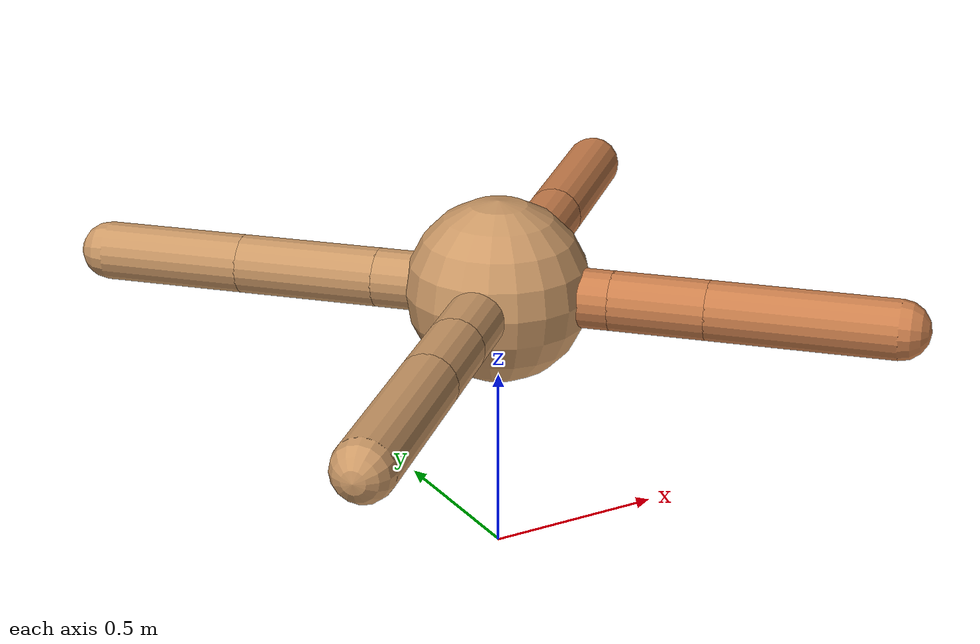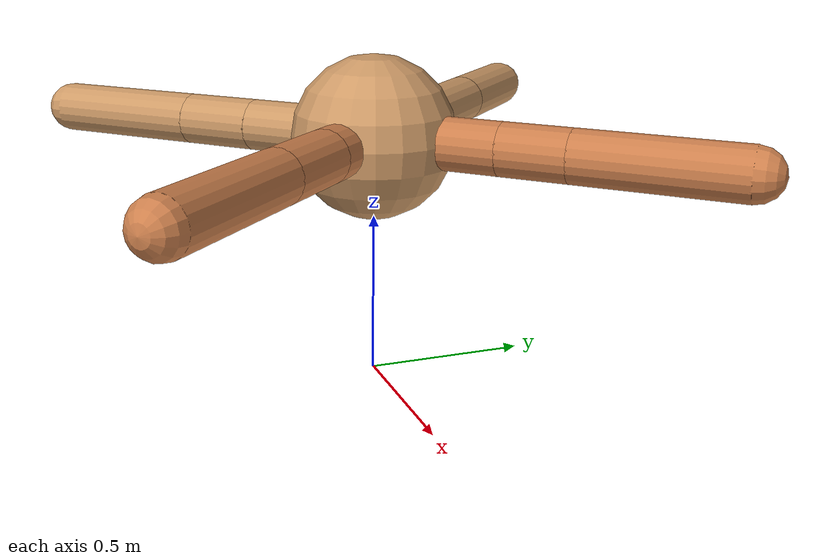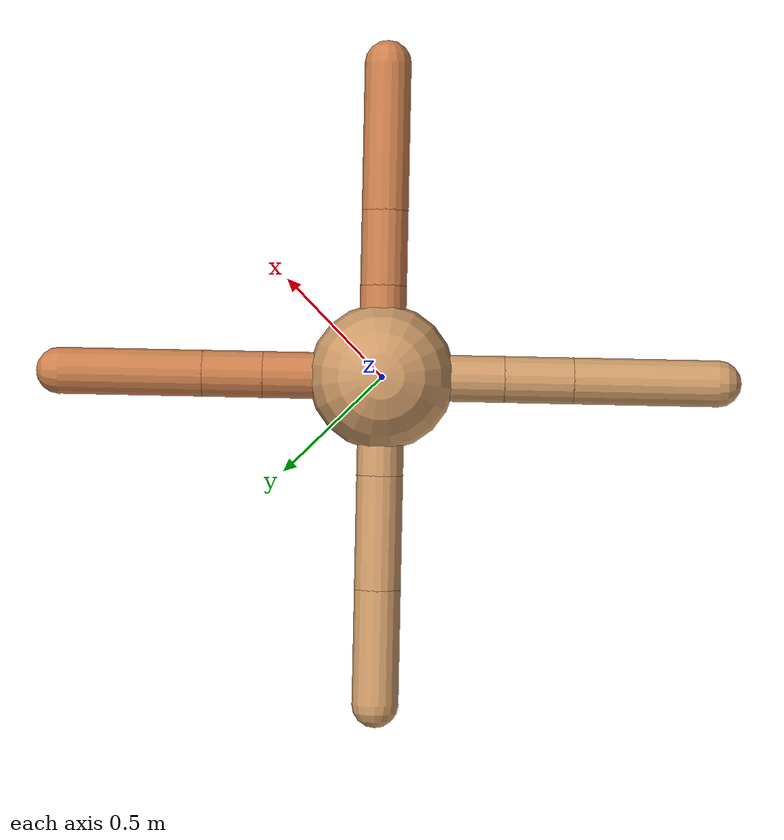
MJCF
<mujoco model="ant">
  <compiler angle="degree" coordinate="local" inertiafromgeom="true" />
  <option integrator="RK4" timestep="0.01" />
  <custom>
    <numeric data="0.0 0.0 0.55 1.0 0.0 0.0 0.0 0.0 1.0 0.0 -1.0 0.0 -1.0 0.0 1.0" name="init_qpos" />
  </custom>
  <default>
    <joint armature="1" damping="1" limited="true" />
    <geom conaffinity="0" condim="3" density="5.0" friction="1.5 0.1 0.1" margin="0.01" rgba="0.8 0.6 0.4 1" />
  </default>
  <worldbody>
    <body name="torso" pos="0 0 0.75">
      <geom name="torso_geom" pos="0 0 0" size="0.25" type="sphere" />

      <body name="front_left_leg" pos="0 0 0">
        <geom fromto="0.0 0.0 0.0 0.2868075859042339 0.2868075859042339 0.0" name="aux_1_geom" size="0.08" type="capsule" rgba=".8 .5 .3 1" />
        <body name="aux_1" pos="0.2868075859042339 0.2868075859042339 0.0">
          <joint axis="0 0 1" name="hip_1" pos="0.0 0.0 0.0" range="-40 40" type="hinge" />
          <geom fromto="0.0 0.0 0.0 0.14507467301114182 0.14507467301114182 0.0" name="left_leg_geom" size="0.08" type="capsule" rgba=".8 .5 .3 1" />
          <body pos="0.14507467301114182 0.14507467301114182 0.0" name="front_left_foot">
            <joint axis="-1 1 0" name="ankle_1" pos="0.0 0.0 0.0" range="30 100" type="hinge" />
            <geom fromto="0.0 0.0 0.0 0.34506464289203365 0.34506464289203365 0.0" name="left_ankle_geom" size="0.08" type="capsule" rgba=".8 .5 .3 1" />
          </body>
        </body>
      </body>
      <body name="front_right_leg" pos="0 0 0">
        <geom fromto="0.0 0.0 0.0 -0.2375298693531311 0.2375298693531311 0.0" name="aux_2_geom" size="0.08" type="capsule" />
        <body name="aux_2" pos="-0.2375298693531311 0.2375298693531311 0.0">
          <joint axis="0 0 1" name="hip_2" pos="0.0 0.0 0.0" range="-40 40" type="hinge" />
          <geom fromto="0.0 0.0 0.0 -0.2750635754326604 0.2750635754326604 0.0" name="right_leg_geom" size="0.08" type="capsule" />
          <body pos="-0.2750635754326604 0.2750635754326604 0.0" name="front_right_foot">
            <joint axis="1 1 0" name="ankle_2" pos="0.0 0.0 0.0" range="-100 -30" type="hinge" />
            <geom fromto="0.0 0.0 0.0 -0.27772722567197056 0.27772722567197056 0.0" name="right_ankle_geom" size="0.08" type="capsule" />
          </body>
        </body>
      </body>
      <body name="left_back_leg" pos="0 0 0">
        <geom fromto="0.0 0.0 0.0 -0.2948410469206522 -0.2948410469206522 0.0" name="aux_3_geom" size="0.08" type="capsule" />
        <body name="aux_3" pos="-0.2948410469206522 -0.2948410469206522 0.0">
          <joint axis="0 0 1" name="hip_3" pos="0.0 0.0 0.0" range="-40 40" type="hinge" />
          <geom fromto="0.0 0.0 0.0 -0.16649952906668064 -0.16649952906668064 0.0" name="back_leg_geom" size="0.08" type="capsule" />
          <body pos="-0.16649952906668064 -0.16649952906668064 0.0" name="left_back_foot">
            <joint axis="-1 1 0" name="ankle_3" pos="0.0 0.0 0.0" range="-100 -30" type="hinge" />
            <geom fromto="0.0 0.0 0.0 -0.35006771317918317 -0.35006771317918317 0.0" name="third_ankle_geom" size="0.08" type="capsule" />
          </body>
        </body>
      </body>
      <body name="right_back_leg" pos="0 0 0">
        <geom fromto="0.0 0.0 0.0 0.22003772636218777 -0.22003772636218777 0.0" name="aux_4_geom" size="0.08" type="capsule" rgba=".8 .5 .3 1" />
        <body name="aux_4" pos="0.22003772636218777 -0.22003772636218777 0.0">
          <joint axis="0 0 1" name="hip_4" pos="0.0 0.0 0.0" range="-40 40" type="hinge" />
          <geom fromto="0.0 0.0 0.0 0.18137280242775475 -0.18137280242775475 0.0" name="rightback_leg_geom" size="0.08" type="capsule" rgba=".8 .5 .3 1" />
          <body pos="0.18137280242775475 -0.18137280242775475 0.0" name="right_back_foot">
            <joint axis="1 1 0" name="ankle_4" pos="0.0 0.0 0.0" range="30 100" type="hinge" />
            <geom fromto="0.0 0.0 0.0 0.354566097787753 -0.354566097787753 0.0" name="fourth_ankle_geom" size="0.08" type="capsule" rgba=".8 .5 .3 1" />
          </body>
        </body>
      </body>
    </body>
  </worldbody>
  <actuator>
    <motor ctrllimited="true" ctrlrange="-1.0 1.0" joint="hip_4" gear="150" />
    <motor ctrllimited="true" ctrlrange="-1.0 1.0" joint="ankle_4" gear="150" />
    <motor ctrllimited="true" ctrlrange="-1.0 1.0" joint="hip_1" gear="150" />
    <motor ctrllimited="true" ctrlrange="-1.0 1.0" joint="ankle_1" gear="150" />
    <motor ctrllimited="true" ctrlrange="-1.0 1.0" joint="hip_2" gear="150" />
    <motor ctrllimited="true" ctrlrange="-1.0 1.0" joint="ankle_2" gear="150" />
    <motor ctrllimited="true" ctrlrange="-1.0 1.0" joint="hip_3" gear="150" />
    <motor ctrllimited="true" ctrlrange="-1.0 1.0" joint="ankle_3" gear="150" />
  </actuator>
</mujoco>
